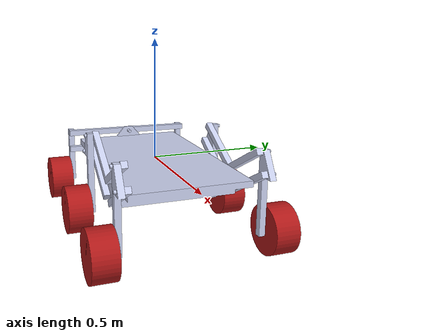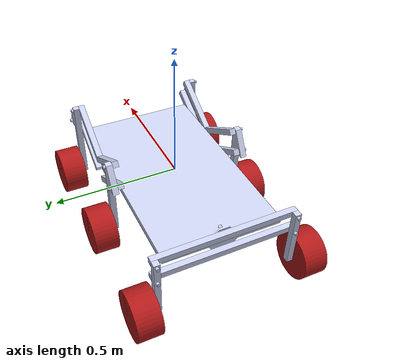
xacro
<?xml version="1.0" encoding="utf-8"?>
<robot
  name="rover_simple_v1_2">
  <link
    name="base_link">
    <inertial>
      <origin
        xyz="0.065394 3.6917E-17 -0.0291"
        rpy="0 0 0" />
      <mass
        value="15.823" />
      <inertia
        ixx="0.3231"
        ixy="-1.631E-16"
        ixz="0.036909"
        iyy="0.83124"
        iyz="1.728E-17"
        izz="1.1312" />
    </inertial>
    <visual>
      <origin
        xyz="0 0 0"
        rpy="0 0 0" />
      <geometry>
        <mesh
          filename="package://circ_rover_description/meshes/base_link.STL" />
      </geometry>
      <material
        name="">
        <color
          rgba="0.79216 0.81961 0.93333 1" />
      </material>
    </visual>
    <collision>
      <origin
        xyz="0 0 0"
        rpy="0 0 0" />
      <geometry>
        <mesh
          filename="package://circ_rover_description/meshes/base_link.STL" />
      </geometry>
    </collision>
  </link>
  <link
    name="RL2up_link">
    <inertial>
      <origin
        xyz="0.00098326 -0.048163 0.06572"
        rpy="0 0 0" />
      <mass
        value="0.35165" />
      <inertia
        ixx="0.00058844"
        ixy="4.4854E-07"
        ixz="8.4163E-05"
        iyy="0.0067323"
        iyz="2.998E-05"
        izz="0.0062126" />
    </inertial>
    <visual>
      <origin
        xyz="0 0 0"
        rpy="0 0 0" />
      <geometry>
        <mesh
          filename="package://circ_rover_description/meshes/RL2up_link.STL" />
      </geometry>
      <material
        name="">
        <color
          rgba="0.79216 0.81961 0.93333 1" />
      </material>
    </visual>
    <collision>
      <origin
        xyz="0 0 0"
        rpy="0 0 0" />
      <geometry>
        <mesh
          filename="package://circ_rover_description/meshes/RL2up_link.STL" />
      </geometry>
    </collision>
  </link>
  <joint
    name="RL2up_joint"
    type="revolute">
    <origin
      xyz="0.20894 -0.20857 -0.0127"
      rpy="0 0 0" />
    <parent
      link="base_link" />
    <child
      link="RL2up_link" />
    <axis
      xyz="0 1 0" />
    <limit
      lower="-1.5"
      upper="1.5"
      effort="0"
      velocity="0" />
    <dynamics
      damping="0.1"
      friction="0.05" />
  </joint>
  <link
    name="RL5Fup_link">
    <inertial>
      <origin
        xyz="0.0076906 0.012145 -0.14103"
        rpy="0 0 0" />
      <mass
        value="0.29333" />
      <inertia
        ixx="0.0028904"
        ixy="-1.2514E-06"
        ixz="-0.00017855"
        iyy="0.0029492"
        iyz="-2.79E-05"
        izz="0.00010048" />
    </inertial>
    <visual>
      <origin
        xyz="0 0 0"
        rpy="0 0 0" />
      <geometry>
        <mesh
          filename="package://circ_rover_description/meshes/RL5Fup_link.STL" />
      </geometry>
      <material
        name="">
        <color
          rgba="0.79216 0.81961 0.93333 1" />
      </material>
    </visual>
    <collision>
      <origin
        xyz="0 0 0"
        rpy="0 0 0" />
      <geometry>
        <mesh
          filename="package://circ_rover_description/meshes/RL5Fup_link.STL" />
      </geometry>
    </collision>
  </link>
  <joint
    name="RL5Fup_joint"
    type="revolute">
    <origin
      xyz="0.21835 -0.0858 0.12175"
      rpy="0 0 0" />
    <parent
      link="RL2up_link" />
    <child
      link="RL5Fup_link" />
    <axis
      xyz="0 1 0" />
    <limit
      lower="-1.5"
      upper="1.5"
      effort="0"
      velocity="0" />
    <dynamics
      damping="0.1"
      friction="0.05" />
  </joint>
  <link
    name="FR_link">
    <inertial>
      <origin
        xyz="0.00015846 0.04999 0.00043787"
        rpy="0 0 0" />
      <mass
        value="3.1305" />
      <inertia
        ixx="0.010449"
        ixy="-2.4542E-06"
        ixz="2.8348E-06"
        iyy="0.015699"
        iyz="-6.782E-06"
        izz="0.010455" />
    </inertial>
    <visual>
      <origin
        xyz="0 0 0"
        rpy="0 0 0" />
      <geometry>
        <mesh
          filename="package://circ_rover_description/meshes/FR_link.STL" />
      </geometry>
      <material
        name="">
        <color
          rgba="0.69412 0.098039 0.098039 1" />
      </material>
    </visual>
    <collision>
      <origin
        xyz="0 0 0"
        rpy="0 0 0" />
      <geometry>
        <mesh
          filename="package://circ_rover_description/meshes/FR_link.STL" />
      </geometry>
    </collision>
  </link>
  <joint
    name="FR_joint"
    type="continuous">
    <origin
      xyz="-0.000176 -0.1 -0.31299"
      rpy="0 0 0" />
    <parent
      link="RL5Fup_link" />
    <child
      link="FR_link" />
    <axis
      xyz="0 1 0" />
    <limit
      lower="0"
      upper="0"
      effort="0"
      velocity="0" />
    <dynamics
      friction="0.1" />
  </joint>
  <link
    name="RL5Mup_link">
    <inertial>
      <origin
        xyz="-0.00769063863242325 0.0121452936339811 -0.14103025565529"
        rpy="0 0 0" />
      <mass
        value="0.293330883283669" />
      <inertia
        ixx="0.00289043444987535"
        ixy="1.25138283176357E-06"
        ixz="0.000178547994079131"
        iyy="0.00294920584403958"
        iyz="-2.79002722011482E-05"
        izz="0.000100480286474077" />
    </inertial>
    <visual>
      <origin
        xyz="0 0 0"
        rpy="0 0 0" />
      <geometry>
        <mesh
          filename="package://circ_rover_description/meshes/RL5Mup_link.STL" />
      </geometry>
      <material
        name="">
        <color
          rgba="0.792156862745098 0.819607843137255 0.933333333333333 1" />
      </material>
    </visual>
    <collision>
      <origin
        xyz="0 0 0"
        rpy="0 0 0" />
      <geometry>
        <mesh
          filename="package://circ_rover_description/meshes/RL5Mup_link.STL" />
      </geometry>
    </collision>
  </link>
  <joint
    name="RL5Mup_joint"
    type="revolute">
    <origin
      xyz="-0.21461 -0.0858 0.12822"
      rpy="0 0 0" />
    <parent
      link="RL2up_link" />
    <child
      link="RL5Mup_link" />
    <axis
      xyz="0 1 0" />
    <limit
      lower="-1.5"
      upper="1.5"
      effort="0"
      velocity="0" />
    <dynamics
      damping="0.1"
      friction="0.05" />
    <mimic
      joint="RL2up_joint"
      multiplier="1"
      offset="0" />
  </joint>
  <link
    name="MR_link">
    <inertial>
      <origin
        xyz="-4.4033E-05 0.04999 0.00046357"
        rpy="0 0 0" />
      <mass
        value="3.1305" />
      <inertia
        ixx="0.010448"
        ixy="6.82E-07"
        ixz="-6.7415E-07"
        iyy="0.015699"
        iyz="-7.1801E-06"
        izz="0.010456" />
    </inertial>
    <visual>
      <origin
        xyz="0 0 0"
        rpy="0 0 0" />
      <geometry>
        <mesh
          filename="package://circ_rover_description/meshes/MR_link.STL" />
      </geometry>
      <material
        name="">
        <color
          rgba="0.69412 0.098039 0.098039 1" />
      </material>
    </visual>
    <collision>
      <origin
        xyz="0 0 0"
        rpy="0 0 0" />
      <geometry>
        <mesh
          filename="package://circ_rover_description/meshes/MR_link.STL" />
      </geometry>
    </collision>
  </link>
  <joint
    name="MR_joint"
    type="continuous">
    <origin
      xyz="4.8996E-05 -0.1 -0.31301"
      rpy="0 0 0" />
    <parent
      link="RL5Mup_link" />
    <child
      link="MR_link" />
    <axis
      xyz="0 1 0" />
    <dynamics
      friction="0.1" />
  </joint>
  <link
    name="RL2F_link">
    <inertial>
      <origin
        xyz="0.10918 -0.0477 0.060874"
        rpy="0 0 0" />
      <mass
        value="0.18497" />
      <inertia
        ixx="0.00031847"
        ixy="3.5529E-05"
        ixz="-0.00051774"
        iyy="0.0012362"
        iyz="1.981E-05"
        izz="0.00095834" />
    </inertial>
    <visual>
      <origin
        xyz="0 0 0"
        rpy="0 0 0" />
      <geometry>
        <mesh
          filename="package://circ_rover_description/meshes/RL2F_link.STL" />
      </geometry>
      <material
        name="">
        <color
          rgba="0.79216 0.81961 0.93333 1" />
      </material>
    </visual>
    <collision>
      <origin
        xyz="0 0 0"
        rpy="0 0 0" />
      <geometry>
        <mesh
          filename="package://circ_rover_description/meshes/RL2F_link.STL" />
      </geometry>
    </collision>
  </link>
  <joint
    name="RL2F_joint"
    type="revolute">
    <origin
      xyz="0.25269 -0.20857 -0.088477"
      rpy="0 0 0" />
    <parent
      link="base_link" />
    <child
      link="RL2F_link" />
    <axis
      xyz="0 1 0" />
    <limit
      lower="-1.5"
      upper="1.5"
      effort="0"
      velocity="0" />
    <dynamics
      damping="0.1"
      friction="0.05" />
  </joint>
  <link
    name="RL2M_link">
    <inertial>
      <origin
        xyz="-0.10731 -0.0477 0.064112"
        rpy="0 0 0" />
      <mass
        value="0.18497" />
      <inertia
        ixx="0.00035"
        ixy="-3.492E-05"
        ixz="0.00053594"
        iyy="0.0012362"
        iyz="2.0864E-05"
        izz="0.00092681" />
    </inertial>
    <visual>
      <origin
        xyz="0 0 0"
        rpy="0 0 0" />
      <geometry>
        <mesh
          filename="package://circ_rover_description/meshes/RL2M_link.STL" />
      </geometry>
      <material
        name="">
        <color
          rgba="0.79216 0.81961 0.93333 1" />
      </material>
    </visual>
    <collision>
      <origin
        xyz="0 0 0"
        rpy="0 0 0" />
      <geometry>
        <mesh
          filename="package://circ_rover_description/meshes/RL2M_link.STL" />
      </geometry>
    </collision>
  </link>
  <joint
    name="RL2M_joint"
    type="revolute">
    <origin
      xyz="0.16519 -0.20857 -0.088477"
      rpy="0 0 0" />
    <parent
      link="base_link" />
    <child
      link="RL2M_link" />
    <axis
      xyz="0 1 0" />
    <limit
      lower="-1.5"
      upper="1.5"
      effort="0"
      velocity="0" />
    <dynamics
      damping="0.1"
      friction="0.05" />
  </joint>
  <link
    name="LL2up_link">
    <inertial>
      <origin
        xyz="0.00091645 0.048163 0.065721"
        rpy="0 0 0" />
      <mass
        value="0.35165" />
      <inertia
        ixx="0.00058828"
        ixy="-4.1806E-07"
        ixz="7.8446E-05"
        iyy="0.0067323"
        iyz="-2.9981E-05"
        izz="0.0062127" />
    </inertial>
    <visual>
      <origin
        xyz="0 0 0"
        rpy="0 0 0" />
      <geometry>
        <mesh
          filename="package://circ_rover_description/meshes/LL2up_link.STL" />
      </geometry>
      <material
        name="">
        <color
          rgba="0.79216 0.81961 0.93333 1" />
      </material>
    </visual>
    <collision>
      <origin
        xyz="0 0 0"
        rpy="0 0 0" />
      <geometry>
        <mesh
          filename="package://circ_rover_description/meshes/LL2up_link.STL" />
      </geometry>
    </collision>
  </link>
  <joint
    name="LL2up_joint"
    type="revolute">
    <origin
      xyz="0.20894 0.20857 -0.0127"
      rpy="0 0 0" />
    <parent
      link="base_link" />
    <child
      link="LL2up_link" />
    <axis
      xyz="0 1 0" />
    <limit
      lower="-1.5"
      upper="1.5"
      effort="0"
      velocity="0" />
    <dynamics
      damping="0.1"
      friction="0.05" />
  </joint>
  <link
    name="LL5Fup_link">
    <inertial>
      <origin
        xyz="0.0076906 -0.012145 -0.14103"
        rpy="0 0 0" />
      <mass
        value="0.29333" />
      <inertia
        ixx="0.0028904"
        ixy="1.2514E-06"
        ixz="-0.00017855"
        iyy="0.0029492"
        iyz="2.79E-05"
        izz="0.00010048" />
    </inertial>
    <visual>
      <origin
        xyz="0 0 0"
        rpy="0 0 0" />
      <geometry>
        <mesh
          filename="package://circ_rover_description/meshes/LL5Fup_link.STL" />
      </geometry>
      <material
        name="">
        <color
          rgba="0.79216 0.81961 0.93333 1" />
      </material>
    </visual>
    <collision>
      <origin
        xyz="0 0 0"
        rpy="0 0 0" />
      <geometry>
        <mesh
          filename="package://circ_rover_description/meshes/LL5Fup_link.STL" />
      </geometry>
    </collision>
  </link>
  <joint
    name="LL5Fup_joint"
    type="revolute">
    <origin
      xyz="0.21823 0.0858 0.12197"
      rpy="0 0 0" />
    <parent
      link="LL2up_link" />
    <child
      link="LL5Fup_link" />
    <axis
      xyz="0 1 0" />
    <limit
      lower="-1.5"
      upper="1.5"
      effort="0"
      velocity="0" />
    <dynamics
      damping="0.1"
      friction="0.05" />
  </joint>
  <link
    name="FL_link">
    <inertial>
      <origin
        xyz="-9.96747688486455E-05 -0.0499897597004844 0.000454868422873678"
        rpy="0 0 0" />
      <mass
        value="3.13052407011922" />
      <inertia
        ixx="0.0104483266514516"
        ixy="-1.54381562067166E-06"
        ixz="-1.90614159922228E-06"
        iyy="0.0156991895878841"
        iyz="7.04524309102212E-06"
        izz="0.0104559749633527" />
    </inertial>
    <visual>
      <origin
        xyz="0 0 0"
        rpy="0 0 0" />
      <geometry>
        <mesh
          filename="package://circ_rover_description/meshes/FL_link.STL" />
      </geometry>
      <material
        name="">
        <color
          rgba="0.694117647058824 0.0980392156862745 0.0980392156862745 1" />
      </material>
    </visual>
    <collision>
      <origin
        xyz="0 0 0"
        rpy="0 0 0" />
      <geometry>
        <mesh
          filename="package://circ_rover_description/meshes/FL_link.STL" />
      </geometry>
    </collision>
  </link>
  <joint
    name="FL_joint"
    type="continuous">
    <origin
      xyz="0.00011051 0.1 -0.313"
      rpy="0 0 0" />
    <parent
      link="LL5Fup_link" />
    <child
      link="FL_link" />
    <axis
      xyz="0 1 0" />
    <dynamics
      friction="0.1" />
  </joint>
  <link
    name="LL5Mup_link">
    <inertial>
      <origin
        xyz="-0.00769063860003295 -0.012145293633981 -0.141030255657078"
        rpy="0 0 0" />
      <mass
        value="0.293330883283669" />
      <inertia
        ixx="0.00289043444979333"
        ixy="-1.25138283817265E-06"
        ixz="0.000178547994719998"
        iyy="0.00294920584403959"
        iyz="2.79002722008615E-05"
        izz="0.000100480286556104" />
    </inertial>
    <visual>
      <origin
        xyz="0 0 0"
        rpy="0 0 0" />
      <geometry>
        <mesh
          filename="package://circ_rover_description/meshes/LL5Mup_link.STL" />
      </geometry>
      <material
        name="">
        <color
          rgba="0.792156862745098 0.819607843137255 0.933333333333333 1" />
      </material>
    </visual>
    <collision>
      <origin
        xyz="0 0 0"
        rpy="0 0 0" />
      <geometry>
        <mesh
          filename="package://circ_rover_description/meshes/LL5Mup_link.STL" />
      </geometry>
    </collision>
  </link>
  <joint
    name="LL5Mup_joint"
    type="revolute">
    <origin
      xyz="-0.21474 0.0858 0.12801"
      rpy="0 0 0" />
    <parent
      link="LL2up_link" />
    <child
      link="LL5Mup_link" />
    <axis
      xyz="0 1 0" />
    <limit
      lower="-1.5"
      upper="1.5"
      effort="0"
      velocity="0" />
    <dynamics
      damping="0.1"
      friction="0.05" />
  </joint>
  <link
    name="ML_link">
    <inertial>
      <origin
        xyz="2.21417883058198E-05 -0.0499897597004856 0.000465134478291995"
        rpy="0 0 0" />
      <mass
        value="3.13052407011922" />
      <inertia
        ixx="0.0104478867163192"
        ixy="3.42943746383718E-07"
        ixz="2.73992274820629E-07"
        iyy="0.0156991895878841"
        iyz="7.20424919537306E-06"
        izz="0.0104564148984851" />
    </inertial>
    <visual>
      <origin
        xyz="0 0 0"
        rpy="0 0 0" />
      <geometry>
        <mesh
          filename="package://circ_rover_description/meshes/ML_link.STL" />
      </geometry>
      <material
        name="">
        <color
          rgba="0.694117647058824 0.0980392156862745 0.0980392156862745 1" />
      </material>
    </visual>
    <collision>
      <origin
        xyz="0 0 0"
        rpy="0 0 0" />
      <geometry>
        <mesh
          filename="package://circ_rover_description/meshes/ML_link.STL" />
      </geometry>
    </collision>
  </link>
  <joint
    name="ML_joint"
    type="continuous">
    <origin
      xyz="-2.4455E-05 0.1 -0.31302"
      rpy="0 0 0" />
    <parent
      link="LL5Mup_link" />
    <child
      link="ML_link" />
    <axis
      xyz="0 1 0" />
    <dynamics
      friction="0.1" />
  </joint>
  <link
    name="LL2F_link">
    <inertial>
      <origin
        xyz="0.10911 0.0477 0.060985"
        rpy="0 0 0" />
      <mass
        value="0.18497" />
      <inertia
        ixx="0.00031952"
        ixy="-3.5508E-05"
        ixz="-0.00051839"
        iyy="0.0012362"
        iyz="-1.9846E-05"
        izz="0.00095729" />
    </inertial>
    <visual>
      <origin
        xyz="0 0 0"
        rpy="0 0 0" />
      <geometry>
        <mesh
          filename="package://circ_rover_description/meshes/LL2F_link.STL" />
      </geometry>
      <material
        name="">
        <color
          rgba="0.79216 0.81961 0.93333 1" />
      </material>
    </visual>
    <collision>
      <origin
        xyz="0 0 0"
        rpy="0 0 0" />
      <geometry>
        <mesh
          filename="package://circ_rover_description/meshes/LL2F_link.STL" />
      </geometry>
    </collision>
  </link>
  <joint
    name="LL2F_joint"
    type="revolute">
    <origin
      xyz="0.25269 0.20857 -0.088477"
      rpy="0 0 0" />
    <parent
      link="base_link" />
    <child
      link="LL2F_link" />
    <axis
      xyz="0 1 0" />
    <limit
      lower="-1.5"
      upper="1.5"
      effort="0"
      velocity="0" />
    <dynamics
      damping="0.1"
      friction="0.05" />
  </joint>
  <link
    name="LL2M_link">
    <inertial>
      <origin
        xyz="-0.10737 0.0477 0.064003"
        rpy="0 0 0" />
      <mass
        value="0.18497" />
      <inertia
        ixx="0.00034891"
        ixy="3.4941E-05"
        ixz="0.00053536"
        iyy="0.0012362"
        iyz="-2.0828E-05"
        izz="0.0009279" />
    </inertial>
    <visual>
      <origin
        xyz="0 0 0"
        rpy="0 0 0" />
      <geometry>
        <mesh
          filename="package://circ_rover_description/meshes/LL2M_link.STL" />
      </geometry>
      <material
        name="">
        <color
          rgba="0.79216 0.81961 0.93333 1" />
      </material>
    </visual>
    <collision>
      <origin
        xyz="0 0 0"
        rpy="0 0 0" />
      <geometry>
        <mesh
          filename="package://circ_rover_description/meshes/LL2M_link.STL" />
      </geometry>
    </collision>
  </link>
  <joint
    name="LL2M_joint"
    type="revolute">
    <origin
      xyz="0.16519 0.20857 -0.088477"
      rpy="0 0 0" />
    <parent
      link="base_link" />
    <child
      link="LL2M_link" />
    <axis
      xyz="0 1 0" />
    <limit
      lower="-1.5"
      upper="1.5"
      effort="0"
      velocity="0" />
    <dynamics
      damping="0.1"
      friction="0.05" />
  </joint>
  <link
    name="L4up_link">
    <inertial>
      <origin
        xyz="-0.048111 8.9005E-16 -1.2212E-15"
        rpy="0 0 0" />
      <mass
        value="0.39599" />
      <inertia
        ixx="0.011847"
        ixy="-5.3963E-19"
        ixz="3.2261E-21"
        iyy="5.8401E-05"
        iyz="0.00011062"
        izz="0.011862" />
    </inertial>
    <visual>
      <origin
        xyz="0 0 0"
        rpy="0 0 0" />
      <geometry>
        <mesh
          filename="package://circ_rover_description/meshes/L4up_link.STL" />
      </geometry>
      <material
        name="">
        <color
          rgba="0.79216 0.81961 0.93333 1" />
      </material>
    </visual>
    <collision>
      <origin
        xyz="0 0 0"
        rpy="0 0 0" />
      <geometry>
        <mesh
          filename="package://circ_rover_description/meshes/L4up_link.STL" />
      </geometry>
    </collision>
  </link>
  <joint
    name="L4up_joint"
    type="revolute">
    <origin
      xyz="-0.39288 0 0.0273"
      rpy="0 0 0" />
    <parent
      link="base_link" />
    <child
      link="L4up_link" />
    <axis
      xyz="-1 0 0" />
    <limit
      lower="-1.5"
      upper="1.5"
      effort="0"
      velocity="0" />
    <dynamics
      damping="0.1"
      friction="0.05" />
  </joint>
  <link
    name="LL6up_link">
    <inertial>
      <origin
        xyz="0.0223 0.0010197 -0.12174"
        rpy="0 0 0" />
      <mass
        value="0.15957" />
      <inertia
        ixx="0.00087985"
        ixy="1.2554E-21"
        ixz="9.5067E-20"
        iyy="0.00087426"
        iyz="1.7209E-05"
        izz="2.2299E-05" />
    </inertial>
    <visual>
      <origin
        xyz="0 0 0"
        rpy="0 0 0" />
      <geometry>
        <mesh
          filename="package://circ_rover_description/meshes/LL6up_link.STL" />
      </geometry>
      <material
        name="">
        <color
          rgba="0.79216 0.81961 0.93333 1" />
      </material>
    </visual>
    <collision>
      <origin
        xyz="0 0 0"
        rpy="0 0 0" />
      <geometry>
        <mesh
          filename="package://circ_rover_description/meshes/LL6up_link.STL" />
      </geometry>
    </collision>
  </link>
  <joint
    name="LL6up_joint"
    type="revolute">
    <origin
      xyz="-0.0954 0.28166 -0.0026393"
      rpy="0 0 0" />
    <parent
      link="L4up_link" />
    <child
      link="LL6up_link" />
    <axis
      xyz="1 0 0" />
    <limit
      lower="-1.5"
      upper="1.5"
      effort="0"
      velocity="0" />
    <dynamics
      damping="0.1"
      friction="0.05" />
  </joint>
  <link
    name="BL_link">
    <inertial>
      <origin
        xyz="0.000233 -0.04999 0.00040318"
        rpy="0 0 0" />
      <mass
        value="3.1305" />
      <inertia
        ixx="0.01045"
        ixy="3.6088E-06"
        ixz="3.6343E-06"
        iyy="0.015699"
        iyz="6.2446E-06"
        izz="0.010454" />
    </inertial>
    <visual>
      <origin
        xyz="0 0 0"
        rpy="0 0 0" />
      <geometry>
        <mesh
          filename="package://circ_rover_description/meshes/BL_link.STL" />
      </geometry>
      <material
        name="">
        <color
          rgba="0.69412 0.098039 0.098039 1" />
      </material>
    </visual>
    <collision>
      <origin
        xyz="0 0 0"
        rpy="0 0 0" />
      <geometry>
        <mesh
          filename="package://circ_rover_description/meshes/BL_link.STL" />
      </geometry>
    </collision>
  </link>
  <joint
    name="BL_joint"
    type="continuous">
    <origin
      xyz="0.022041 0.1127 -0.22795"
      rpy="0 0 0" />
    <parent
      link="LL6up_link" />
    <child
      link="BL_link" />
    <axis
      xyz="0 1 0" />
    <dynamics
      friction="0.1" />
  </joint>
  <link
    name="RL6up_link">
    <inertial>
      <origin
        xyz="0.0223 -0.0010197 -0.12174"
        rpy="0 0 0" />
      <mass
        value="0.15957" />
      <inertia
        ixx="0.00087985"
        ixy="3.3236E-21"
        ixz="-3.8248E-21"
        iyy="0.00087426"
        iyz="-1.7209E-05"
        izz="2.2299E-05" />
    </inertial>
    <visual>
      <origin
        xyz="0 0 0"
        rpy="0 0 0" />
      <geometry>
        <mesh
          filename="package://circ_rover_description/meshes/RL6up_link.STL" />
      </geometry>
      <material
        name="">
        <color
          rgba="0.79216 0.81961 0.93333 1" />
      </material>
    </visual>
    <collision>
      <origin
        xyz="0 0 0"
        rpy="0 0 0" />
      <geometry>
        <mesh
          filename="package://circ_rover_description/meshes/RL6up_link.STL" />
      </geometry>
    </collision>
  </link>
  <joint
    name="RL6up_joint"
    type="revolute">
    <origin
      xyz="-0.0954 -0.28166 0.0026393"
      rpy="0 0 0" />
    <parent
      link="L4up_link" />
    <child
      link="RL6up_link" />
    <axis
      xyz="1 0 0" />
    <limit
      lower="-1.5"
      upper="1.5"
      effort="0"
      velocity="0" />
    <dynamics
      damping="0.1"
      friction="0.05" />
  </joint>
  <link
    name="BR_link">
    <inertial>
      <origin
        xyz="0.00027132 0.04999 0.00037845"
        rpy="0 0 0" />
      <mass
        value="3.1305" />
      <inertia
        ixx="0.010451"
        ixy="-4.2023E-06"
        ixz="4.0872E-06"
        iyy="0.015699"
        iyz="-5.8617E-06"
        izz="0.010453" />
    </inertial>
    <visual>
      <origin
        xyz="0 0 0"
        rpy="0 0 0" />
      <geometry>
        <mesh
          filename="package://circ_rover_description/meshes/BR_link.STL" />
      </geometry>
      <material
        name="">
        <color
          rgba="0.69412 0.098039 0.098039 1" />
      </material>
    </visual>
    <collision>
      <origin
        xyz="0 0 0"
        rpy="0 0 0" />
      <geometry>
        <mesh
          filename="package://circ_rover_description/meshes/BR_link.STL" />
      </geometry>
    </collision>
  </link>
  <joint
    name="BR_joint"
    type="continuous">
    <origin
      xyz="0.021999 -0.1127 -0.22792"
      rpy="0 0 0" />
    <parent
      link="RL6up_link" />
    <child
      link="BR_link" />
    <axis
      xyz="0 1 0" />
    <dynamics
      friction="0.1" />
  </joint>
  <link
    name="L4low_link">
    <inertial>
      <origin
        xyz="-0.048169 -1.1087E-16 -4.8139E-17"
        rpy="0 0 0" />
      <mass
        value="0.39839" />
      <inertia
        ixx="0.011974"
        ixy="6.1622E-19"
        ixz="-6.1581E-21"
        iyy="6.088E-05"
        iyz="0.0001118"
        izz="0.011991" />
    </inertial>
    <visual>
      <origin
        xyz="0 0 0"
        rpy="0 0 0" />
      <geometry>
        <mesh
          filename="package://circ_rover_description/meshes/L4low_link.STL" />
      </geometry>
      <material
        name="">
        <color
          rgba="0.79216 0.81961 0.93333 1" />
      </material>
    </visual>
    <collision>
      <origin
        xyz="0 0 0"
        rpy="0 0 0" />
      <geometry>
        <mesh
          filename="package://circ_rover_description/meshes/L4low_link_2.STL" />
      </geometry>
    </collision>
  </link>
  <joint
    name="L4low_joint"
    type="revolute">
    <origin
      xyz="-0.39288 0 -0.0527"
      rpy="0 0 0" />
    <parent
      link="base_link" />
    <child
      link="L4low_link" />
    <axis
      xyz="1 0 0" />
    <limit
      lower="-1.5"
      upper="1.5"
      effort="0"
      velocity="0" />
    <dynamics
      damping="0.1"
      friction="0.05" />
  </joint>

  <gazebo>
    <joint name="extra_joint_LM" type="revolute">
      <pose relative_to='LL2M_link'>-0.216506 0.08580 0.1250 0 0 0</pose>
      <type>revolute</type>
      <parent>LL2M_link</parent>
      <child>LL5Mup_link</child>
      <axis>
        <xyz>0 1 0</xyz>
        <limit>
          <lower>-1.5</lower>
          <upper>1.5</upper>
        </limit>
        <dynamics>
          <damping>0.5</damping>
          <friction>0.05</friction>
          <spring_reference>0</spring_reference>
          <spring_stiffness>100</spring_stiffness>
        </dynamics>
      </axis>
    </joint>
    <joint name="extra_joint_LF" type="revolute">
      <pose relative_to='LL2F_link'>0.216506 0.08580 0.1250 0 0 0</pose>
      <type>revolute</type>
      <parent>LL2F_link</parent>
      <child>LL5Fup_link</child>
      <axis>
        <xyz>0 1 0</xyz>
        <limit>
          <lower>-1.5</lower>
          <upper>1.5</upper>
        </limit>
        <dynamics>
          <damping>0.5</damping>
          <friction>0.05</friction>
          <spring_reference>0</spring_reference>
          <spring_stiffness>100</spring_stiffness>
        </dynamics>
      </axis>
    </joint>
    <joint name="extra_joint_RM" type="revolute">
      <pose relative_to='RL2M_link'>-0.216506 -0.08580 0.1250 0 0 0</pose>
      <type>revolute</type>
      <parent>RL2M_link</parent>
      <child>RL5Mup_link</child>
      <axis>
        <xyz>0 1 0</xyz>
        <limit>
          <lower>-1.5</lower>
          <upper>1.5</upper>
        </limit>
        <dynamics>
          <damping>0.5</damping>
          <friction>0.05</friction>
          <spring_reference>0</spring_reference>
          <spring_stiffness>100</spring_stiffness>
        </dynamics>
      </axis>
    </joint>
    <joint name="extra_joint_RF" type="revolute">
      <pose relative_to='RL2F_link'>0.216506 -0.08580 0.1250 0 0 0</pose>
      <type>revolute</type>
      <parent>RL2F_link</parent>
      <child>RL5Fup_link</child>
      <axis>
        <xyz>0 1 0</xyz>
        <limit>
          <lower>-1.5</lower>
          <upper>1.5</upper>
        </limit>
        <dynamics>
          <damping>0.5</damping>
          <friction>0.05</friction>
          <spring_reference>0</spring_reference>
          <spring_stiffness>100</spring_stiffness>
        </dynamics>
      </axis>
    </joint>
    <joint name="extra_joint_BL" type="revolute">
      <pose relative_to='L4low_link'>-0.0954 0.281670 0 0 0 0</pose>
      <type>revolute</type>
      <parent>L4low_link</parent>
      <child>LL6up_link</child>
      <axis>
        <xyz>1 0 0</xyz>
        <limit>
          <lower>-1.5</lower>
          <upper>1.5</upper>
        </limit>
        <dynamics>
          <damping>0.5</damping>
          <friction>0.05</friction>
          <spring_reference>0</spring_reference>
          <spring_stiffness>100</spring_stiffness>
        </dynamics>
      </axis>
    </joint>
    <joint name="extra_joint_BR" type="revolute">
      <pose relative_to='L4low_link'>-0.0954 -0.281670 0 0 0 0</pose>
      <type>revolute</type>
      <parent>L4low_link</parent>
      <child>RL6up_link</child>
      <axis>
        <xyz>1 0 0</xyz>
        <limit>
          <lower>-1.5</lower>
          <upper>1.5</upper>
        </limit>
        <dynamics>
          <damping>0.5</damping>
          <friction>0.05</friction>
          <spring_reference>0</spring_reference>
          <spring_stiffness>100</spring_stiffness>
        </dynamics>
      </axis>
    </joint>
    <plugin name="diffential_drive" filename="libgazebo_ros_diff_drive.so">

      <!--wheel information-->

      <leftJoint>BL_joint</leftJoint>
      <rightJoint>BR_joint</rightJoint>
      <wheelDiameter>0.2</wheelDiameter>
      <wheelSeparation>0.09998</wheelSeparation>

      <!--limits-->
      <wheelTorque>20</wheelTorque>
      <wheelAcceleration>1.0</wheelAcceleration>

      <!--output-->
      <odometryTopic>odom</odometryTopic>
      <odometryFrame>odom</odometryFrame>
      <odometrySource>1</odometrySource>
      <publishWheelTF>false</publishWheelTF>
      <publishOdom>true</publishOdom>
      <plublishWheelJointState>false</plublishWheelJointState>
      <legacyMode>true</legacyMode>
      <updateRate>1</updateRate>
      <commandTopic>cmd_vel</commandTopic>
    </plugin>
  </gazebo>
</robot>
